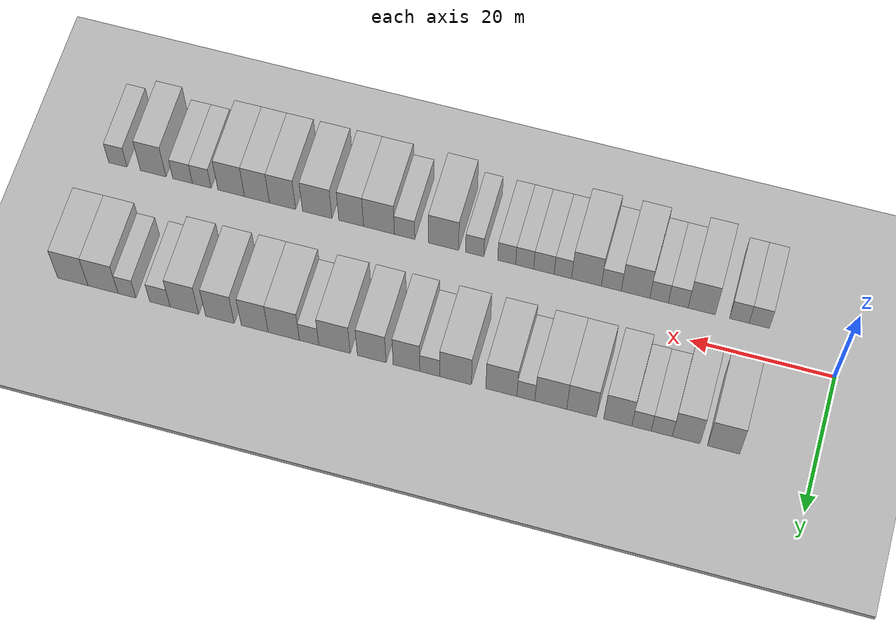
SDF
<sdf version="1.6">
 <world name="default">
  <include><name>ground_plane_1</name><uri>model://HANNAS_ground_plane</uri></include>
  <include>
   <name>ground_plane_2</name>
   <uri>model://HANNAS_ground_plane</uri>
   <pose>100 0 0  0 0 0</pose>
  </include>
  <model name="building_1">
   <static>1</static>
   <pose>12.1952 9.5000 0 0.000000 0.000000 1.570796</pose>
   <link name="link">
    <pose>0 0 4.50 0 0 0</pose>
    <collision name="collision"><geometry><box><size>10.0000 4.3904 9.0000</size></box></geometry></collision>
    <visual name="visual">
     <cast_shadows>0</cast_shadows>
     <geometry><box><size>10.0000 4.3904 9.0000</size></box></geometry>
     <material>
      <script>
       <uri>model://HANNAS_wall/materials/scripts</uri>
       <uri>model://HANNAS_wall/materials/textures</uri>
       <name>vrc/HANNAS_wall</name>
      </script>
     </material>
    </visual>
   </link>
  </model>
  <model name="building_2">
   <static>1</static>
   <pose>17.2943 9.5000 0 0.000000 0.000000 1.570796</pose>
   <link name="link">
    <pose>0 0 4.50 0 0 0</pose>
    <collision name="collision"><geometry><box><size>10.0000 3.8079 9.0000</size></box></geometry></collision>
    <visual name="visual">
     <cast_shadows>0</cast_shadows>
     <geometry><box><size>10.0000 3.8079 9.0000</size></box></geometry>
     <material>
      <script>
       <uri>model://HANNAS_wall/materials/scripts</uri>
       <uri>model://HANNAS_wall/materials/textures</uri>
       <name>vrc/HANNAS_wall</name>
      </script>
     </material>
    </visual>
   </link>
  </model>
  <model name="building_3">
   <static>1</static>
   <pose>20.6465 9.5000 0 0.000000 0.000000 1.570796</pose>
   <link name="link">
    <pose>0 0 3.00 0 0 0</pose>
    <collision name="collision"><geometry><box><size>10.0000 2.8964 6.0000</size></box></geometry></collision>
    <visual name="visual">
     <cast_shadows>0</cast_shadows>
     <geometry><box><size>10.0000 2.8964 6.0000</size></box></geometry>
     <material>
      <script>
       <uri>model://HANNAS_wall/materials/scripts</uri>
       <uri>model://HANNAS_wall/materials/textures</uri>
       <name>vrc/HANNAS_wall</name>
      </script>
     </material>
    </visual>
   </link>
  </model>
  <model name="building_4">
   <static>1</static>
   <pose>23.4257 9.5000 0 0.000000 0.000000 1.570796</pose>
   <link name="link">
    <pose>0 0 3.00 0 0 0</pose>
    <collision name="collision"><geometry><box><size>10.0000 2.6621 6.0000</size></box></geometry></collision>
    <visual name="visual">
     <cast_shadows>0</cast_shadows>
     <geometry><box><size>10.0000 2.6621 6.0000</size></box></geometry>
     <material>
      <script>
       <uri>model://HANNAS_wall/materials/scripts</uri>
       <uri>model://HANNAS_wall/materials/textures</uri>
       <name>vrc/HANNAS_wall</name>
      </script>
     </material>
    </visual>
   </link>
  </model>
  <model name="building_5">
   <static>1</static>
   <pose>26.6972 9.5000 0 0.000000 0.000000 1.570796</pose>
   <link name="link">
    <pose>0 0 4.50 0 0 0</pose>
    <collision name="collision"><geometry><box><size>10.0000 3.8809 9.0000</size></box></geometry></collision>
    <visual name="visual">
     <cast_shadows>0</cast_shadows>
     <geometry><box><size>10.0000 3.8809 9.0000</size></box></geometry>
     <material>
      <script>
       <uri>model://HANNAS_wall/materials/scripts</uri>
       <uri>model://HANNAS_wall/materials/textures</uri>
       <name>vrc/HANNAS_wall</name>
      </script>
     </material>
    </visual>
   </link>
  </model>
  <model name="building_6">
   <static>1</static>
   <pose>31.6975 9.5000 0 0.000000 0.000000 1.570796</pose>
   <link name="link">
    <pose>0 0 4.50 0 0 0</pose>
    <collision name="collision"><geometry><box><size>10.0000 4.1196 9.0000</size></box></geometry></collision>
    <visual name="visual">
     <cast_shadows>0</cast_shadows>
     <geometry><box><size>10.0000 4.1196 9.0000</size></box></geometry>
     <material>
      <script>
       <uri>model://HANNAS_wall/materials/scripts</uri>
       <uri>model://HANNAS_wall/materials/textures</uri>
       <name>vrc/HANNAS_wall</name>
      </script>
     </material>
    </visual>
   </link>
  </model>
  <model name="building_7">
   <static>1</static>
   <pose>35.9691 9.5000 0 0.000000 0.000000 1.570796</pose>
   <link name="link">
    <pose>0 0 4.50 0 0 0</pose>
    <collision name="collision"><geometry><box><size>10.0000 4.4238 9.0000</size></box></geometry></collision>
    <visual name="visual">
     <cast_shadows>0</cast_shadows>
     <geometry><box><size>10.0000 4.4238 9.0000</size></box></geometry>
     <material>
      <script>
       <uri>model://HANNAS_wall/materials/scripts</uri>
       <uri>model://HANNAS_wall/materials/textures</uri>
       <name>vrc/HANNAS_wall</name>
      </script>
     </material>
    </visual>
   </link>
  </model>
  <model name="building_8">
   <static>1</static>
   <pose>39.4314 9.5000 0 0.000000 0.000000 1.570796</pose>
   <link name="link">
    <pose>0 0 3.00 0 0 0</pose>
    <collision name="collision"><geometry><box><size>10.0000 2.5007 6.0000</size></box></geometry></collision>
    <visual name="visual">
     <cast_shadows>0</cast_shadows>
     <geometry><box><size>10.0000 2.5007 6.0000</size></box></geometry>
     <material>
      <script>
       <uri>model://HANNAS_wall/materials/scripts</uri>
       <uri>model://HANNAS_wall/materials/textures</uri>
       <name>vrc/HANNAS_wall</name>
      </script>
     </material>
    </visual>
   </link>
  </model>
  <model name="building_9">
   <static>1</static>
   <pose>42.8500 9.5000 0 0.000000 0.000000 1.570796</pose>
   <link name="link">
    <pose>0 0 4.50 0 0 0</pose>
    <collision name="collision"><geometry><box><size>10.0000 4.3365 9.0000</size></box></geometry></collision>
    <visual name="visual">
     <cast_shadows>0</cast_shadows>
     <geometry><box><size>10.0000 4.3365 9.0000</size></box></geometry>
     <material>
      <script>
       <uri>model://HANNAS_wall/materials/scripts</uri>
       <uri>model://HANNAS_wall/materials/textures</uri>
       <name>vrc/HANNAS_wall</name>
      </script>
     </material>
    </visual>
   </link>
  </model>
  <model name="building_10">
   <static>1</static>
   <pose>49.2461 9.5000 0 0.000000 0.000000 1.570796</pose>
   <link name="link">
    <pose>0 0 4.50 0 0 0</pose>
    <collision name="collision"><geometry><box><size>10.0000 4.4557 9.0000</size></box></geometry></collision>
    <visual name="visual">
     <cast_shadows>0</cast_shadows>
     <geometry><box><size>10.0000 4.4557 9.0000</size></box></geometry>
     <material>
      <script>
       <uri>model://HANNAS_wall/materials/scripts</uri>
       <uri>model://HANNAS_wall/materials/textures</uri>
       <name>vrc/HANNAS_wall</name>
      </script>
     </material>
    </visual>
   </link>
  </model>
  <model name="building_11">
   <static>1</static>
   <pose>52.8624 9.5000 0 0.000000 0.000000 1.570796</pose>
   <link name="link">
    <pose>0 0 3.00 0 0 0</pose>
    <collision name="collision"><geometry><box><size>10.0000 2.7770 6.0000</size></box></geometry></collision>
    <visual name="visual">
     <cast_shadows>0</cast_shadows>
     <geometry><box><size>10.0000 2.7770 6.0000</size></box></geometry>
     <material>
      <script>
       <uri>model://HANNAS_wall/materials/scripts</uri>
       <uri>model://HANNAS_wall/materials/textures</uri>
       <name>vrc/HANNAS_wall</name>
      </script>
     </material>
    </visual>
   </link>
  </model>
  <model name="building_12">
   <static>1</static>
   <pose>56.1337 9.5000 0 0.000000 0.000000 1.570796</pose>
   <link name="link">
    <pose>0 0 4.50 0 0 0</pose>
    <collision name="collision"><geometry><box><size>10.0000 3.7655 9.0000</size></box></geometry></collision>
    <visual name="visual">
     <cast_shadows>0</cast_shadows>
     <geometry><box><size>10.0000 3.7655 9.0000</size></box></geometry>
     <material>
      <script>
       <uri>model://HANNAS_wall/materials/scripts</uri>
       <uri>model://HANNAS_wall/materials/textures</uri>
       <name>vrc/HANNAS_wall</name>
      </script>
     </material>
    </visual>
   </link>
  </model>
  <model name="building_13">
   <static>1</static>
   <pose>61.0541 9.5000 0 0.000000 0.000000 1.570796</pose>
   <link name="link">
    <pose>0 0 4.50 0 0 0</pose>
    <collision name="collision"><geometry><box><size>10.0000 4.0752 9.0000</size></box></geometry></collision>
    <visual name="visual">
     <cast_shadows>0</cast_shadows>
     <geometry><box><size>10.0000 4.0752 9.0000</size></box></geometry>
     <material>
      <script>
       <uri>model://HANNAS_wall/materials/scripts</uri>
       <uri>model://HANNAS_wall/materials/textures</uri>
       <name>vrc/HANNAS_wall</name>
      </script>
     </material>
    </visual>
   </link>
  </model>
  <model name="building_14">
   <static>1</static>
   <pose>66.3223 9.5000 0 0.000000 0.000000 1.570796</pose>
   <link name="link">
    <pose>0 0 4.50 0 0 0</pose>
    <collision name="collision"><geometry><box><size>10.0000 4.4613 9.0000</size></box></geometry></collision>
    <visual name="visual">
     <cast_shadows>0</cast_shadows>
     <geometry><box><size>10.0000 4.4613 9.0000</size></box></geometry>
     <material>
      <script>
       <uri>model://HANNAS_wall/materials/scripts</uri>
       <uri>model://HANNAS_wall/materials/textures</uri>
       <name>vrc/HANNAS_wall</name>
      </script>
     </material>
    </visual>
   </link>
  </model>
  <model name="building_15">
   <static>1</static>
   <pose>69.9328 9.5000 0 0.000000 0.000000 1.570796</pose>
   <link name="link">
    <pose>0 0 3.00 0 0 0</pose>
    <collision name="collision"><geometry><box><size>10.0000 2.7596 6.0000</size></box></geometry></collision>
    <visual name="visual">
     <cast_shadows>0</cast_shadows>
     <geometry><box><size>10.0000 2.7596 6.0000</size></box></geometry>
     <material>
      <script>
       <uri>model://HANNAS_wall/materials/scripts</uri>
       <uri>model://HANNAS_wall/materials/textures</uri>
       <name>vrc/HANNAS_wall</name>
      </script>
     </material>
    </visual>
   </link>
  </model>
  <model name="building_16">
   <static>1</static>
   <pose>73.5438 9.5000 0 0.000000 0.000000 1.570796</pose>
   <link name="link">
    <pose>0 0 4.50 0 0 0</pose>
    <collision name="collision"><geometry><box><size>10.0000 4.4626 9.0000</size></box></geometry></collision>
    <visual name="visual">
     <cast_shadows>0</cast_shadows>
     <geometry><box><size>10.0000 4.4626 9.0000</size></box></geometry>
     <material>
      <script>
       <uri>model://HANNAS_wall/materials/scripts</uri>
       <uri>model://HANNAS_wall/materials/textures</uri>
       <name>vrc/HANNAS_wall</name>
      </script>
     </material>
    </visual>
   </link>
  </model>
  <model name="building_17">
   <static>1</static>
   <pose>77.7067 9.5000 0 0.000000 0.000000 1.570796</pose>
   <link name="link">
    <pose>0 0 4.50 0 0 0</pose>
    <collision name="collision"><geometry><box><size>10.0000 3.8632 9.0000</size></box></geometry></collision>
    <visual name="visual">
     <cast_shadows>0</cast_shadows>
     <geometry><box><size>10.0000 3.8632 9.0000</size></box></geometry>
     <material>
      <script>
       <uri>model://HANNAS_wall/materials/scripts</uri>
       <uri>model://HANNAS_wall/materials/textures</uri>
       <name>vrc/HANNAS_wall</name>
      </script>
     </material>
    </visual>
   </link>
  </model>
  <model name="building_18">
   <static>1</static>
   <pose>82.6979 9.5000 0 0.000000 0.000000 1.570796</pose>
   <link name="link">
    <pose>0 0 4.50 0 0 0</pose>
    <collision name="collision"><geometry><box><size>10.0000 4.1193 9.0000</size></box></geometry></collision>
    <visual name="visual">
     <cast_shadows>0</cast_shadows>
     <geometry><box><size>10.0000 4.1193 9.0000</size></box></geometry>
     <material>
      <script>
       <uri>model://HANNAS_wall/materials/scripts</uri>
       <uri>model://HANNAS_wall/materials/textures</uri>
       <name>vrc/HANNAS_wall</name>
      </script>
     </material>
    </visual>
   </link>
  </model>
  <model name="building_19">
   <static>1</static>
   <pose>87.8192 9.5000 0 0.000000 0.000000 1.570796</pose>
   <link name="link">
    <pose>0 0 4.50 0 0 0</pose>
    <collision name="collision"><geometry><box><size>10.0000 4.1233 9.0000</size></box></geometry></collision>
    <visual name="visual">
     <cast_shadows>0</cast_shadows>
     <geometry><box><size>10.0000 4.1233 9.0000</size></box></geometry>
     <material>
      <script>
       <uri>model://HANNAS_wall/materials/scripts</uri>
       <uri>model://HANNAS_wall/materials/textures</uri>
       <name>vrc/HANNAS_wall</name>
      </script>
     </material>
    </visual>
   </link>
  </model>
  <model name="building_20">
   <static>1</static>
   <pose>91.3578 9.5000 0 0.000000 0.000000 1.570796</pose>
   <link name="link">
    <pose>0 0 3.00 0 0 0</pose>
    <collision name="collision"><geometry><box><size>10.0000 2.9539 6.0000</size></box></geometry></collision>
    <visual name="visual">
     <cast_shadows>0</cast_shadows>
     <geometry><box><size>10.0000 2.9539 6.0000</size></box></geometry>
     <material>
      <script>
       <uri>model://HANNAS_wall/materials/scripts</uri>
       <uri>model://HANNAS_wall/materials/textures</uri>
       <name>vrc/HANNAS_wall</name>
      </script>
     </material>
    </visual>
   </link>
  </model>
  <model name="building_21">
   <static>1</static>
   <pose>96.1265 9.5000 0 0.000000 0.000000 1.570796</pose>
   <link name="link">
    <pose>0 0 3.00 0 0 0</pose>
    <collision name="collision"><geometry><box><size>10.0000 2.5835 6.0000</size></box></geometry></collision>
    <visual name="visual">
     <cast_shadows>0</cast_shadows>
     <geometry><box><size>10.0000 2.5835 6.0000</size></box></geometry>
     <material>
      <script>
       <uri>model://HANNAS_wall/materials/scripts</uri>
       <uri>model://HANNAS_wall/materials/textures</uri>
       <name>vrc/HANNAS_wall</name>
      </script>
     </material>
    </visual>
   </link>
  </model>
  <model name="building_22">
   <static>1</static>
   <pose>99.6186 9.5000 0 0.000000 0.000000 1.570796</pose>
   <link name="link">
    <pose>0 0 4.50 0 0 0</pose>
    <collision name="collision"><geometry><box><size>10.0000 4.4008 9.0000</size></box></geometry></collision>
    <visual name="visual">
     <cast_shadows>0</cast_shadows>
     <geometry><box><size>10.0000 4.4008 9.0000</size></box></geometry>
     <material>
      <script>
       <uri>model://HANNAS_wall/materials/scripts</uri>
       <uri>model://HANNAS_wall/materials/textures</uri>
       <name>vrc/HANNAS_wall</name>
      </script>
     </material>
    </visual>
   </link>
  </model>
  <model name="building_23">
   <static>1</static>
   <pose>104.0349 9.5000 0 0.000000 0.000000 1.570796</pose>
   <link name="link">
    <pose>0 0 4.50 0 0 0</pose>
    <collision name="collision"><geometry><box><size>10.0000 4.4318 9.0000</size></box></geometry></collision>
    <visual name="visual">
     <cast_shadows>0</cast_shadows>
     <geometry><box><size>10.0000 4.4318 9.0000</size></box></geometry>
     <material>
      <script>
       <uri>model://HANNAS_wall/materials/scripts</uri>
       <uri>model://HANNAS_wall/materials/textures</uri>
       <name>vrc/HANNAS_wall</name>
      </script>
     </material>
    </visual>
   </link>
  </model>
  <model name="building_48">
   <static>1</static>
   <pose>11.4273 -9.5000 0 0.000000 0.000000 1.570796</pose>
   <link name="link">
    <pose>0 0 3.00 0 0 0</pose>
    <collision name="collision"><geometry><box><size>10.0000 2.8546 6.0000</size></box></geometry></collision>
    <visual name="visual">
     <cast_shadows>0</cast_shadows>
     <geometry><box><size>10.0000 2.8546 6.0000</size></box></geometry>
     <material>
      <script>
       <uri>model://HANNAS_wall/materials/scripts</uri>
       <uri>model://HANNAS_wall/materials/textures</uri>
       <name>vrc/HANNAS_wall</name>
      </script>
     </material>
    </visual>
   </link>
  </model>
  <model name="building_49">
   <static>1</static>
   <pose>14.2122 -9.5000 0 0.000000 0.000000 1.570796</pose>
   <link name="link">
    <pose>0 0 3.00 0 0 0</pose>
    <collision name="collision"><geometry><box><size>10.0000 2.7153 6.0000</size></box></geometry></collision>
    <visual name="visual">
     <cast_shadows>0</cast_shadows>
     <geometry><box><size>10.0000 2.7153 6.0000</size></box></geometry>
     <material>
      <script>
       <uri>model://HANNAS_wall/materials/scripts</uri>
       <uri>model://HANNAS_wall/materials/textures</uri>
       <name>vrc/HANNAS_wall</name>
      </script>
     </material>
    </visual>
   </link>
  </model>
  <model name="building_50">
   <static>1</static>
   <pose>19.4815 -9.5000 0 0.000000 0.000000 1.570796</pose>
   <link name="link">
    <pose>0 0 4.50 0 0 0</pose>
    <collision name="collision"><geometry><box><size>10.0000 3.8231 9.0000</size></box></geometry></collision>
    <visual name="visual">
     <cast_shadows>0</cast_shadows>
     <geometry><box><size>10.0000 3.8231 9.0000</size></box></geometry>
     <material>
      <script>
       <uri>model://HANNAS_wall/materials/scripts</uri>
       <uri>model://HANNAS_wall/materials/textures</uri>
       <name>vrc/HANNAS_wall</name>
      </script>
     </material>
    </visual>
   </link>
  </model>
  <model name="building_51">
   <static>1</static>
   <pose>22.7909 -9.5000 0 0.000000 0.000000 1.570796</pose>
   <link name="link">
    <pose>0 0 3.00 0 0 0</pose>
    <collision name="collision"><geometry><box><size>10.0000 2.7958 6.0000</size></box></geometry></collision>
    <visual name="visual">
     <cast_shadows>0</cast_shadows>
     <geometry><box><size>10.0000 2.7958 6.0000</size></box></geometry>
     <material>
      <script>
       <uri>model://HANNAS_wall/materials/scripts</uri>
       <uri>model://HANNAS_wall/materials/textures</uri>
       <name>vrc/HANNAS_wall</name>
      </script>
     </material>
    </visual>
   </link>
  </model>
  <model name="building_52">
   <static>1</static>
   <pose>25.4921 -9.5000 0 0.000000 0.000000 1.570796</pose>
   <link name="link">
    <pose>0 0 3.00 0 0 0</pose>
    <collision name="collision"><geometry><box><size>10.0000 2.6066 6.0000</size></box></geometry></collision>
    <visual name="visual">
     <cast_shadows>0</cast_shadows>
     <geometry><box><size>10.0000 2.6066 6.0000</size></box></geometry>
     <material>
      <script>
       <uri>model://HANNAS_wall/materials/scripts</uri>
       <uri>model://HANNAS_wall/materials/textures</uri>
       <name>vrc/HANNAS_wall</name>
      </script>
     </material>
    </visual>
   </link>
  </model>
  <model name="building_53">
   <static>1</static>
   <pose>28.8129 -9.5000 0 0.000000 0.000000 1.570796</pose>
   <link name="link">
    <pose>0 0 4.50 0 0 0</pose>
    <collision name="collision"><geometry><box><size>10.0000 4.0350 9.0000</size></box></geometry></collision>
    <visual name="visual">
     <cast_shadows>0</cast_shadows>
     <geometry><box><size>10.0000 4.0350 9.0000</size></box></geometry>
     <material>
      <script>
       <uri>model://HANNAS_wall/materials/scripts</uri>
       <uri>model://HANNAS_wall/materials/textures</uri>
       <name>vrc/HANNAS_wall</name>
      </script>
     </material>
    </visual>
   </link>
  </model>
  <model name="building_54">
   <static>1</static>
   <pose>32.2364 -9.5000 0 0.000000 0.000000 1.570796</pose>
   <link name="link">
    <pose>0 0 3.00 0 0 0</pose>
    <collision name="collision"><geometry><box><size>10.0000 2.8119 6.0000</size></box></geometry></collision>
    <visual name="visual">
     <cast_shadows>0</cast_shadows>
     <geometry><box><size>10.0000 2.8119 6.0000</size></box></geometry>
     <material>
      <script>
       <uri>model://HANNAS_wall/materials/scripts</uri>
       <uri>model://HANNAS_wall/materials/textures</uri>
       <name>vrc/HANNAS_wall</name>
      </script>
     </material>
    </visual>
   </link>
  </model>
  <model name="building_55">
   <static>1</static>
   <pose>35.7567 -9.5000 0 0.000000 0.000000 1.570796</pose>
   <link name="link">
    <pose>0 0 4.50 0 0 0</pose>
    <collision name="collision"><geometry><box><size>10.0000 4.2289 9.0000</size></box></geometry></collision>
    <visual name="visual">
     <cast_shadows>0</cast_shadows>
     <geometry><box><size>10.0000 4.2289 9.0000</size></box></geometry>
     <material>
      <script>
       <uri>model://HANNAS_wall/materials/scripts</uri>
       <uri>model://HANNAS_wall/materials/textures</uri>
       <name>vrc/HANNAS_wall</name>
      </script>
     </material>
    </visual>
   </link>
  </model>
  <model name="building_56">
   <static>1</static>
   <pose>39.1147 -9.5000 0 0.000000 0.000000 1.570796</pose>
   <link name="link">
    <pose>0 0 3.00 0 0 0</pose>
    <collision name="collision"><geometry><box><size>10.0000 2.4870 6.0000</size></box></geometry></collision>
    <visual name="visual">
     <cast_shadows>0</cast_shadows>
     <geometry><box><size>10.0000 2.4870 6.0000</size></box></geometry>
     <material>
      <script>
       <uri>model://HANNAS_wall/materials/scripts</uri>
       <uri>model://HANNAS_wall/materials/textures</uri>
       <name>vrc/HANNAS_wall</name>
      </script>
     </material>
    </visual>
   </link>
  </model>
  <model name="building_57">
   <static>1</static>
   <pose>41.8252 -9.5000 0 0.000000 0.000000 1.570796</pose>
   <link name="link">
    <pose>0 0 3.00 0 0 0</pose>
    <collision name="collision"><geometry><box><size>10.0000 2.9340 6.0000</size></box></geometry></collision>
    <visual name="visual">
     <cast_shadows>0</cast_shadows>
     <geometry><box><size>10.0000 2.9340 6.0000</size></box></geometry>
     <material>
      <script>
       <uri>model://HANNAS_wall/materials/scripts</uri>
       <uri>model://HANNAS_wall/materials/textures</uri>
       <name>vrc/HANNAS_wall</name>
      </script>
     </material>
    </visual>
   </link>
  </model>
  <model name="building_58">
   <static>1</static>
   <pose>44.5836 -9.5000 0 0.000000 0.000000 1.570796</pose>
   <link name="link">
    <pose>0 0 3.00 0 0 0</pose>
    <collision name="collision"><geometry><box><size>10.0000 2.5829 6.0000</size></box></geometry></collision>
    <visual name="visual">
     <cast_shadows>0</cast_shadows>
     <geometry><box><size>10.0000 2.5829 6.0000</size></box></geometry>
     <material>
      <script>
       <uri>model://HANNAS_wall/materials/scripts</uri>
       <uri>model://HANNAS_wall/materials/textures</uri>
       <name>vrc/HANNAS_wall</name>
      </script>
     </material>
    </visual>
   </link>
  </model>
  <model name="building_59">
   <static>1</static>
   <pose>47.1597 -9.5000 0 0.000000 0.000000 1.570796</pose>
   <link name="link">
    <pose>0 0 3.00 0 0 0</pose>
    <collision name="collision"><geometry><box><size>10.0000 2.5693 6.0000</size></box></geometry></collision>
    <visual name="visual">
     <cast_shadows>0</cast_shadows>
     <geometry><box><size>10.0000 2.5693 6.0000</size></box></geometry>
     <material>
      <script>
       <uri>model://HANNAS_wall/materials/scripts</uri>
       <uri>model://HANNAS_wall/materials/textures</uri>
       <name>vrc/HANNAS_wall</name>
      </script>
     </material>
    </visual>
   </link>
  </model>
  <model name="building_60">
   <static>1</static>
   <pose>51.7449 -9.5000 0 0.000000 0.000000 1.570796</pose>
   <link name="link">
    <pose>0 0 3.00 0 0 0</pose>
    <collision name="collision"><geometry><box><size>10.0000 2.6011 6.0000</size></box></geometry></collision>
    <visual name="visual">
     <cast_shadows>0</cast_shadows>
     <geometry><box><size>10.0000 2.6011 6.0000</size></box></geometry>
     <material>
      <script>
       <uri>model://HANNAS_wall/materials/scripts</uri>
       <uri>model://HANNAS_wall/materials/textures</uri>
       <name>vrc/HANNAS_wall</name>
      </script>
     </material>
    </visual>
   </link>
  </model>
  <model name="building_61">
   <static>1</static>
   <pose>56.2164 -9.5000 0 0.000000 0.000000 1.570796</pose>
   <link name="link">
    <pose>0 0 4.50 0 0 0</pose>
    <collision name="collision"><geometry><box><size>10.0000 4.3420 9.0000</size></box></geometry></collision>
    <visual name="visual">
     <cast_shadows>0</cast_shadows>
     <geometry><box><size>10.0000 4.3420 9.0000</size></box></geometry>
     <material>
      <script>
       <uri>model://HANNAS_wall/materials/scripts</uri>
       <uri>model://HANNAS_wall/materials/textures</uri>
       <name>vrc/HANNAS_wall</name>
      </script>
     </material>
    </visual>
   </link>
  </model>
  <model name="building_62">
   <static>1</static>
   <pose>61.8629 -9.5000 0 0.000000 0.000000 1.570796</pose>
   <link name="link">
    <pose>0 0 3.00 0 0 0</pose>
    <collision name="collision"><geometry><box><size>10.0000 2.9510 6.0000</size></box></geometry></collision>
    <visual name="visual">
     <cast_shadows>0</cast_shadows>
     <geometry><box><size>10.0000 2.9510 6.0000</size></box></geometry>
     <material>
      <script>
       <uri>model://HANNAS_wall/materials/scripts</uri>
       <uri>model://HANNAS_wall/materials/textures</uri>
       <name>vrc/HANNAS_wall</name>
      </script>
     </material>
    </visual>
   </link>
  </model>
  <model name="building_63">
   <static>1</static>
   <pose>65.5865 -9.5000 0 0.000000 0.000000 1.570796</pose>
   <link name="link">
    <pose>0 0 4.50 0 0 0</pose>
    <collision name="collision"><geometry><box><size>10.0000 4.4961 9.0000</size></box></geometry></collision>
    <visual name="visual">
     <cast_shadows>0</cast_shadows>
     <geometry><box><size>10.0000 4.4961 9.0000</size></box></geometry>
     <material>
      <script>
       <uri>model://HANNAS_wall/materials/scripts</uri>
       <uri>model://HANNAS_wall/materials/textures</uri>
       <name>vrc/HANNAS_wall</name>
      </script>
     </material>
    </visual>
   </link>
  </model>
  <model name="building_64">
   <static>1</static>
   <pose>69.6377 -9.5000 0 0.000000 0.000000 1.570796</pose>
   <link name="link">
    <pose>0 0 4.50 0 0 0</pose>
    <collision name="collision"><geometry><box><size>10.0000 3.6064 9.0000</size></box></geometry></collision>
    <visual name="visual">
     <cast_shadows>0</cast_shadows>
     <geometry><box><size>10.0000 3.6064 9.0000</size></box></geometry>
     <material>
      <script>
       <uri>model://HANNAS_wall/materials/scripts</uri>
       <uri>model://HANNAS_wall/materials/textures</uri>
       <name>vrc/HANNAS_wall</name>
      </script>
     </material>
    </visual>
   </link>
  </model>
  <model name="building_65">
   <static>1</static>
   <pose>74.5949 -9.5000 0 0.000000 0.000000 1.570796</pose>
   <link name="link">
    <pose>0 0 4.50 0 0 0</pose>
    <collision name="collision"><geometry><box><size>10.0000 4.3079 9.0000</size></box></geometry></collision>
    <visual name="visual">
     <cast_shadows>0</cast_shadows>
     <geometry><box><size>10.0000 4.3079 9.0000</size></box></geometry>
     <material>
      <script>
       <uri>model://HANNAS_wall/materials/scripts</uri>
       <uri>model://HANNAS_wall/materials/textures</uri>
       <name>vrc/HANNAS_wall</name>
      </script>
     </material>
    </visual>
   </link>
  </model>
  <model name="building_66">
   <static>1</static>
   <pose>79.6844 -9.5000 0 0.000000 0.000000 1.570796</pose>
   <link name="link">
    <pose>0 0 4.50 0 0 0</pose>
    <collision name="collision"><geometry><box><size>10.0000 3.8711 9.0000</size></box></geometry></collision>
    <visual name="visual">
     <cast_shadows>0</cast_shadows>
     <geometry><box><size>10.0000 3.8711 9.0000</size></box></geometry>
     <material>
      <script>
       <uri>model://HANNAS_wall/materials/scripts</uri>
       <uri>model://HANNAS_wall/materials/textures</uri>
       <name>vrc/HANNAS_wall</name>
      </script>
     </material>
    </visual>
   </link>
  </model>
  <model name="building_67">
   <static>1</static>
   <pose>83.4515 -9.5000 0 0.000000 0.000000 1.570796</pose>
   <link name="link">
    <pose>0 0 4.50 0 0 0</pose>
    <collision name="collision"><geometry><box><size>10.0000 3.6631 9.0000</size></box></geometry></collision>
    <visual name="visual">
     <cast_shadows>0</cast_shadows>
     <geometry><box><size>10.0000 3.6631 9.0000</size></box></geometry>
     <material>
      <script>
       <uri>model://HANNAS_wall/materials/scripts</uri>
       <uri>model://HANNAS_wall/materials/textures</uri>
       <name>vrc/HANNAS_wall</name>
      </script>
     </material>
    </visual>
   </link>
  </model>
  <model name="building_68">
   <static>1</static>
   <pose>87.2488 -9.5000 0 0.000000 0.000000 1.570796</pose>
   <link name="link">
    <pose>0 0 4.50 0 0 0</pose>
    <collision name="collision"><geometry><box><size>10.0000 3.9315 9.0000</size></box></geometry></collision>
    <visual name="visual">
     <cast_shadows>0</cast_shadows>
     <geometry><box><size>10.0000 3.9315 9.0000</size></box></geometry>
     <material>
      <script>
       <uri>model://HANNAS_wall/materials/scripts</uri>
       <uri>model://HANNAS_wall/materials/textures</uri>
       <name>vrc/HANNAS_wall</name>
      </script>
     </material>
    </visual>
   </link>
  </model>
  <model name="building_69">
   <static>1</static>
   <pose>91.6026 -9.5000 0 0.000000 0.000000 1.570796</pose>
   <link name="link">
    <pose>0 0 3.00 0 0 0</pose>
    <collision name="collision"><geometry><box><size>10.0000 2.7761 6.0000</size></box></geometry></collision>
    <visual name="visual">
     <cast_shadows>0</cast_shadows>
     <geometry><box><size>10.0000 2.7761 6.0000</size></box></geometry>
     <material>
      <script>
       <uri>model://HANNAS_wall/materials/scripts</uri>
       <uri>model://HANNAS_wall/materials/textures</uri>
       <name>vrc/HANNAS_wall</name>
      </script>
     </material>
    </visual>
   </link>
  </model>
  <model name="building_70">
   <static>1</static>
   <pose>94.4490 -9.5000 0 0.000000 0.000000 1.570796</pose>
   <link name="link">
    <pose>0 0 3.00 0 0 0</pose>
    <collision name="collision"><geometry><box><size>10.0000 2.9165 6.0000</size></box></geometry></collision>
    <visual name="visual">
     <cast_shadows>0</cast_shadows>
     <geometry><box><size>10.0000 2.9165 6.0000</size></box></geometry>
     <material>
      <script>
       <uri>model://HANNAS_wall/materials/scripts</uri>
       <uri>model://HANNAS_wall/materials/textures</uri>
       <name>vrc/HANNAS_wall</name>
      </script>
     </material>
    </visual>
   </link>
  </model>
  <model name="building_71">
   <static>1</static>
   <pose>98.8161 -9.5000 0 0.000000 0.000000 1.570796</pose>
   <link name="link">
    <pose>0 0 4.50 0 0 0</pose>
    <collision name="collision"><geometry><box><size>10.0000 3.8177 9.0000</size></box></geometry></collision>
    <visual name="visual">
     <cast_shadows>0</cast_shadows>
     <geometry><box><size>10.0000 3.8177 9.0000</size></box></geometry>
     <material>
      <script>
       <uri>model://HANNAS_wall/materials/scripts</uri>
       <uri>model://HANNAS_wall/materials/textures</uri>
       <name>vrc/HANNAS_wall</name>
      </script>
     </material>
    </visual>
   </link>
  </model>
  <model name="building_72">
   <static>1</static>
   <pose>104.1056 -9.5000 0 0.000000 0.000000 1.570796</pose>
   <link name="link">
    <pose>0 0 3.00 0 0 0</pose>
    <collision name="collision"><geometry><box><size>10.0000 2.7614 6.0000</size></box></geometry></collision>
    <visual name="visual">
     <cast_shadows>0</cast_shadows>
     <geometry><box><size>10.0000 2.7614 6.0000</size></box></geometry>
     <material>
      <script>
       <uri>model://HANNAS_wall/materials/scripts</uri>
       <uri>model://HANNAS_wall/materials/textures</uri>
       <name>vrc/HANNAS_wall</name>
      </script>
     </material>
    </visual>
   </link>
  </model>
 </world>
</sdf>
